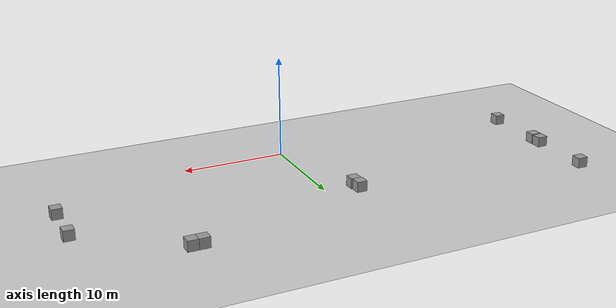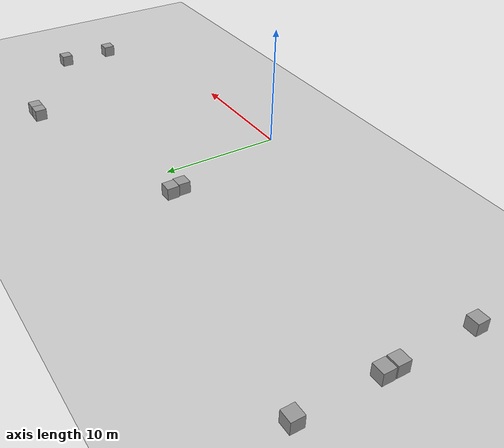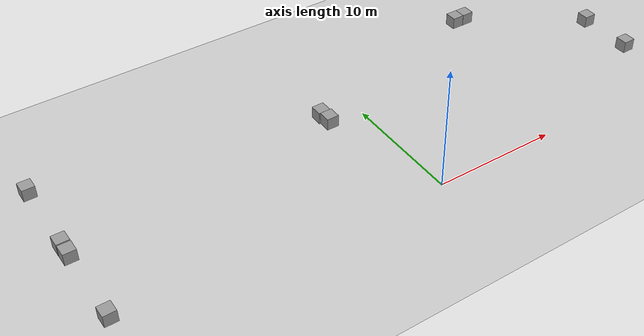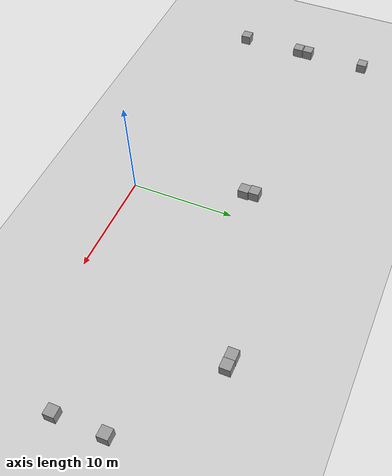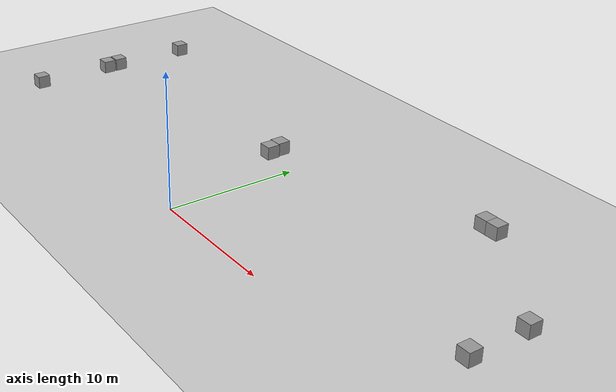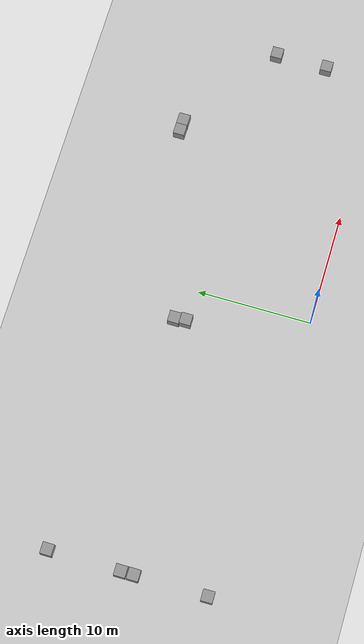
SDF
<sdf version="1.6">
 <world name="default">
  <model name="ground_plane">
   <static>1</static>
   <link name="link">
    <collision name="collision">
     <geometry><plane><normal>0 0 1</normal><size>100 100</size></plane></geometry>
     <surface><friction><ode><mu>100</mu><mu2>50</mu2></ode></friction></surface>
    </collision>
    <visual name="visual">
     <cast_shadows>0</cast_shadows>
     <geometry><plane><normal>0 0 1</normal><size>100 100</size></plane></geometry>
     <material>
      <script><uri>file://media/materials/scripts/gazebo.material</uri><name>Gazebo/Grey</name></script>
     </material>
    </visual>
   </link>
  </model>
  <light name="sun" type="directional">
   <pose>0 0 10 0 -0 0</pose>
   <diffuse>0.8 0.8 0.8 1</diffuse>
   <specular>0.1 0.1 0.1 1</specular>
   <attenuation>
    <range>1000</range>
    <constant>0.9</constant>
    <linear>0.01</linear>
    <quadratic>0.001</quadratic>
   </attenuation>
   <direction>-0.5 0.5 -1</direction>
  </light>
  <gravity>0 0 -9.8</gravity>
  <magnetic_field>6e-06 2.3e-05 -4.2e-05</magnetic_field>
  <atmosphere type="adiabatic"/>
  <physics name="default_physics" default="0" type="ode">
   <max_step_size>0.001</max_step_size>
   <real_time_factor>1</real_time_factor>
   <real_time_update_rate>1000</real_time_update_rate>
  </physics>
  <scene><ambient>0.4 0.4 0.4 1</ambient><background>0.7 0.7 0.7 1</background><shadows>1</shadows></scene>
  <spherical_coordinates>
   <surface_model>EARTH_WGS84</surface_model>
   <latitude_deg>0</latitude_deg>
   <longitude_deg>0</longitude_deg>
   <elevation>0</elevation>
   <heading_deg>0</heading_deg>
  </spherical_coordinates>
  <model name="unit_box_0">
   <pose>14.7268 15.723 0.5 0 0 -6e-06</pose>
   <link name="link">
    <inertial>
     <mass>1</mass>
     <inertia>
      <ixx>0.166667</ixx>
      <ixy>0</ixy>
      <ixz>0</ixz>
      <iyy>0.166667</iyy>
      <iyz>0</iyz>
      <izz>0.166667</izz>
     </inertia>
    </inertial>
    <collision name="collision"><geometry><box><size>1 1 1</size></box></geometry></collision>
    <visual name="visual">
     <geometry><box><size>1 1 1</size></box></geometry>
     <material>
      <script><name>Gazebo/Grey</name><uri>file://media/materials/scripts/gazebo.material</uri></script>
     </material>
    </visual>
   </link>
  </model>
  <model name="unit_box_1">
   <pose>13.7268 15.735 0.5 0 0 -6e-06</pose>
   <link name="link">
    <inertial>
     <mass>1</mass>
     <inertia>
      <ixx>0.166667</ixx>
      <ixy>0</ixy>
      <ixz>0</ixz>
      <iyy>0.166667</iyy>
      <iyz>0</iyz>
      <izz>0.166667</izz>
     </inertia>
    </inertial>
    <collision name="collision"><geometry><box><size>1 1 1</size></box></geometry></collision>
    <visual name="visual">
     <geometry><box><size>1 1 1</size></box></geometry>
     <material>
      <script><name>Gazebo/Grey</name><uri>file://media/materials/scripts/gazebo.material</uri></script>
     </material>
    </visual>
   </link>
  </model>
  <model name="unit_box_2">
   <pose>23.2678 9.46876 0.5 0 -0 8e-06</pose>
   <link name="link">
    <inertial>
     <mass>1</mass>
     <inertia>
      <ixx>0.166667</ixx>
      <ixy>0</ixy>
      <ixz>0</ixz>
      <iyy>0.166667</iyy>
      <iyz>0</iyz>
      <izz>0.166667</izz>
     </inertia>
    </inertial>
    <collision name="collision"><geometry><box><size>1 1 1</size></box></geometry></collision>
    <visual name="visual">
     <geometry><box><size>1 1 1</size></box></geometry>
     <material>
      <script><name>Gazebo/Grey</name><uri>file://media/materials/scripts/gazebo.material</uri></script>
     </material>
    </visual>
   </link>
  </model>
  <model name="unit_box_3_0">
   <pose>23.2609 4.86877 0.5 -0 -1e-06 1.7e-05</pose>
   <link name="link">
    <inertial>
     <mass>1</mass>
     <inertia>
      <ixx>0.166667</ixx>
      <ixy>0</ixy>
      <ixz>0</ixz>
      <iyy>0.166667</iyy>
      <iyz>0</iyz>
      <izz>0.166667</izz>
     </inertia>
    </inertial>
    <collision name="collision"><geometry><box><size>1 1 1</size></box></geometry></collision>
    <visual name="visual">
     <geometry><box><size>1 1 1</size></box></geometry>
     <material>
      <script><name>Gazebo/Grey</name><uri>file://media/materials/scripts/gazebo.material</uri></script>
     </material>
    </visual>
   </link>
  </model>
  <model name="unit_box_3_3">
   <pose>-2.86749 10.269 0.499994 -1e-06 -1e-05 1.3e-05</pose>
   <link name="link">
    <inertial>
     <mass>1</mass>
     <inertia>
      <ixx>0.166667</ixx>
      <ixy>0</ixy>
      <ixz>0</ixz>
      <iyy>0.166667</iyy>
      <iyz>0</iyz>
      <izz>0.166667</izz>
     </inertia>
    </inertial>
    <collision name="collision"><geometry><box><size>1 1 1</size></box></geometry></collision>
    <visual name="visual">
     <geometry><box><size>1 1 1</size></box></geometry>
     <material>
      <script><name>Gazebo/Grey</name><uri>file://media/materials/scripts/gazebo.material</uri></script>
     </material>
    </visual>
   </link>
  </model>
  <model name="unit_box_3_4">
   <pose>-2.97836 11.2731 0.499995 5e-06 4e-06 0.001765</pose>
   <link name="link">
    <inertial>
     <mass>1</mass>
     <inertia>
      <ixx>0.166667</ixx>
      <ixy>0</ixy>
      <ixz>0</ixz>
      <iyy>0.166667</iyy>
      <iyz>0</iyz>
      <izz>0.166667</izz>
     </inertia>
    </inertial>
    <collision name="collision"><geometry><box><size>1 1 1</size></box></geometry></collision>
    <visual name="visual">
     <geometry><box><size>1 1 1</size></box></geometry>
     <material>
      <script><name>Gazebo/Grey</name><uri>file://media/materials/scripts/gazebo.material</uri></script>
     </material>
    </visual>
   </link>
  </model>
  <model name="unit_box_3_5">
   <pose>-24.8185 15.6143 0.5 0 -0 0</pose>
   <link name="link">
    <inertial>
     <mass>1</mass>
     <inertia>
      <ixx>0.166667</ixx>
      <ixy>0</ixy>
      <ixz>0</ixz>
      <iyy>0.166667</iyy>
      <iyz>0</iyz>
      <izz>0.166667</izz>
     </inertia>
    </inertial>
    <collision name="collision"><geometry><box><size>1 1 1</size></box></geometry></collision>
    <visual name="visual">
     <geometry><box><size>1 1 1</size></box></geometry>
     <material>
      <script><name>Gazebo/Grey</name><uri>file://media/materials/scripts/gazebo.material</uri></script>
     </material>
    </visual>
   </link>
  </model>
  <model name="unit_box_3_6">
   <pose>-24.8124 9.31876 0.5 0 -0 0</pose>
   <link name="link">
    <inertial>
     <mass>1</mass>
     <inertia>
      <ixx>0.166667</ixx>
      <ixy>0</ixy>
      <ixz>0</ixz>
      <iyy>0.166667</iyy>
      <iyz>0</iyz>
      <izz>0.166667</izz>
     </inertia>
    </inertial>
    <collision name="collision"><geometry><box><size>1 1 1</size></box></geometry></collision>
    <visual name="visual">
     <geometry><box><size>1 1 1</size></box></geometry>
     <material>
      <script><name>Gazebo/Grey</name><uri>file://media/materials/scripts/gazebo.material</uri></script>
     </material>
    </visual>
   </link>
  </model>
  <model name="unit_box_3_7">
   <pose>-24.8027 8.21876 0.5 0 0 -1e-06</pose>
   <link name="link">
    <inertial>
     <mass>1</mass>
     <inertia>
      <ixx>0.166667</ixx>
      <ixy>0</ixy>
      <ixz>0</ixz>
      <iyy>0.166667</iyy>
      <iyz>0</iyz>
      <izz>0.166667</izz>
     </inertia>
    </inertial>
    <collision name="collision"><geometry><box><size>1 1 1</size></box></geometry></collision>
    <visual name="visual">
     <geometry><box><size>1 1 1</size></box></geometry>
     <material>
      <script><name>Gazebo/Grey</name><uri>file://media/materials/scripts/gazebo.material</uri></script>
     </material>
    </visual>
   </link>
  </model>
  <model name="unit_box_3_8">
   <pose>-24.7804 1.92613 0.502262 -3.5e-05 -0.004536 0.005975</pose>
   <link name="link">
    <inertial>
     <mass>1</mass>
     <inertia>
      <ixx>0.166667</ixx>
      <ixy>0</ixy>
      <ixz>0</ixz>
      <iyy>0.166667</iyy>
      <iyz>0</iyz>
      <izz>0.166667</izz>
     </inertia>
    </inertial>
    <collision name="collision"><geometry><box><size>1 1 1</size></box></geometry></collision>
    <visual name="visual">
     <geometry><box><size>1 1 1</size></box></geometry>
     <material>
      <script><name>Gazebo/Grey</name><uri>file://media/materials/scripts/gazebo.material</uri></script>
     </material>
    </visual>
   </link>
  </model>
 </world>
</sdf>
